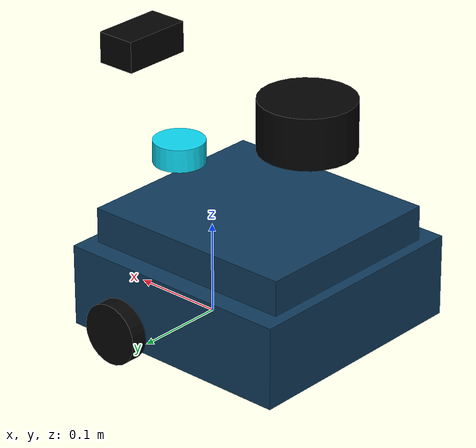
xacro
<?xml version="1.0"?>
<robot xmlns:xacro="http://www.ros.org/wiki/xacro" name="safe_city_inspection_robot">
  <xacro:property name="base_length" value="0.265"/>
  <xacro:property name="base_width" value="0.265"/>
  <xacro:property name="base_height" value="0.089"/>
  <xacro:property name="wheel_radius" value="0.033"/>
  <xacro:property name="wheel_width" value="0.018"/>
  <xacro:property name="wheel_y" value="0.144"/>

  <material name="patrol_blue">
    <color rgba="0.06 0.23 0.36 1.0"/>
  </material>
  <material name="safety_cyan">
    <color rgba="0.05 0.85 0.95 1.0"/>
  </material>
  <material name="wheel_black">
    <color rgba="0.02 0.02 0.025 1.0"/>
  </material>
  <material name="sensor_dark">
    <color rgba="0.01 0.01 0.012 1.0"/>
  </material>

  <link name="base_footprint"/>

  <link name="base_link">
    <visual name="waffle_base">
      <origin xyz="-0.064 0 0.048" rpy="0 0 0"/>
      <geometry>
        <box size="${base_length} ${base_width} ${base_height}"/>
      </geometry>
      <material name="patrol_blue"/>
    </visual>
    <visual name="patrol_top_shell">
      <origin xyz="-0.064 0 0.108" rpy="0 0 0"/>
      <geometry>
        <box size="0.24 0.22 0.045"/>
      </geometry>
      <material name="patrol_blue"/>
    </visual>
    <visual name="status_light">
      <origin xyz="0.045 0 0.16" rpy="0 0 0"/>
      <geometry>
        <cylinder radius="0.028" length="0.025"/>
      </geometry>
      <material name="safety_cyan"/>
    </visual>
    <collision name="base_collision">
      <origin xyz="-0.064 0 0.048" rpy="0 0 0"/>
      <geometry>
        <box size="${base_length} ${base_width} ${base_height}"/>
      </geometry>
    </collision>
    <inertial>
      <origin xyz="-0.064 0 0.048" rpy="0 0 0"/>
      <mass value="1.0"/>
      <inertia ixx="0.001" ixy="0.0" ixz="0.0" iyy="0.001" iyz="0.0" izz="0.001"/>
    </inertial>
  </link>

  <joint name="base_joint" type="fixed">
    <parent link="base_footprint"/>
    <child link="base_link"/>
    <origin xyz="0 0 0.010" rpy="0 0 0"/>
  </joint>

  <link name="wheel_left_link">
    <visual>
      <origin xyz="0 0 0" rpy="1.5708 0 0"/>
      <geometry>
        <cylinder radius="${wheel_radius}" length="${wheel_width}"/>
      </geometry>
      <material name="wheel_black"/>
    </visual>
    <collision>
      <origin xyz="0 0 0" rpy="1.5708 0 0"/>
      <geometry>
        <cylinder radius="${wheel_radius}" length="${wheel_width}"/>
      </geometry>
    </collision>
    <inertial>
      <mass value="0.1"/>
      <inertia ixx="0.001" ixy="0.0" ixz="0.0" iyy="0.001" iyz="0.0" izz="0.001"/>
    </inertial>
  </link>

  <joint name="wheel_left_joint" type="continuous">
    <parent link="base_link"/>
    <child link="wheel_left_link"/>
    <origin xyz="0 ${wheel_y} 0.023" rpy="0 0 0"/>
    <axis xyz="0 1 0"/>
  </joint>

  <link name="wheel_right_link">
    <visual>
      <origin xyz="0 0 0" rpy="1.5708 0 0"/>
      <geometry>
        <cylinder radius="${wheel_radius}" length="${wheel_width}"/>
      </geometry>
      <material name="wheel_black"/>
    </visual>
    <collision>
      <origin xyz="0 0 0" rpy="1.5708 0 0"/>
      <geometry>
        <cylinder radius="${wheel_radius}" length="${wheel_width}"/>
      </geometry>
    </collision>
    <inertial>
      <mass value="0.1"/>
      <inertia ixx="0.001" ixy="0.0" ixz="0.0" iyy="0.001" iyz="0.0" izz="0.001"/>
    </inertial>
  </link>

  <joint name="wheel_right_joint" type="continuous">
    <parent link="base_link"/>
    <child link="wheel_right_link"/>
    <origin xyz="0 -${wheel_y} 0.023" rpy="0 0 0"/>
    <axis xyz="0 1 0"/>
  </joint>

  <link name="base_scan">
    <visual name="rplidar_visual">
      <origin xyz="-0.064 0 0.121" rpy="0 0 0"/>
      <geometry>
        <cylinder radius="0.0508" length="0.055"/>
      </geometry>
      <material name="sensor_dark"/>
    </visual>
  </link>

  <joint name="lidar_joint" type="fixed">
    <parent link="base_link"/>
    <child link="base_scan"/>
    <origin xyz="-0.064 0 0.121" rpy="0 0 0"/>
  </joint>

  <link name="camera_link">
    <visual name="rgb_camera_visual">
      <origin xyz="0.095 0 0.135" rpy="0 0 0"/>
      <geometry>
        <box size="0.045 0.080 0.035"/>
      </geometry>
      <material name="sensor_dark"/>
    </visual>
  </link>

  <joint name="camera_joint" type="fixed">
    <parent link="base_link"/>
    <child link="camera_link"/>
    <origin xyz="0.064 -0.065 0.094" rpy="0 0 0"/>
  </joint>
</robot>
